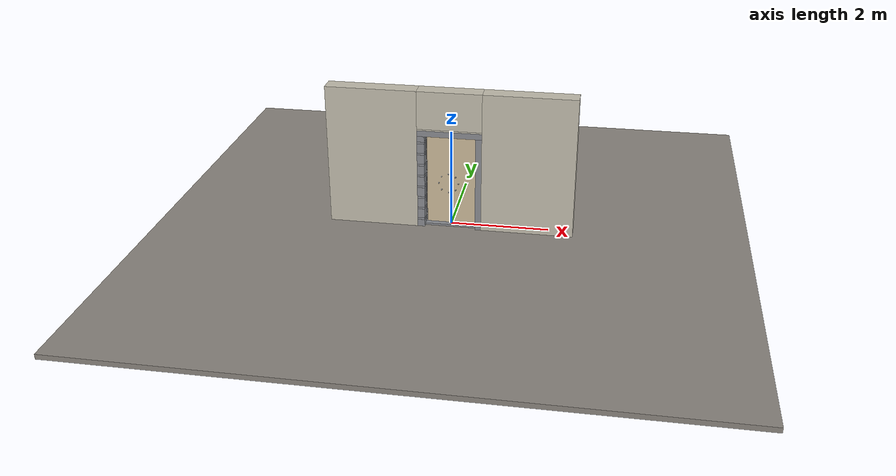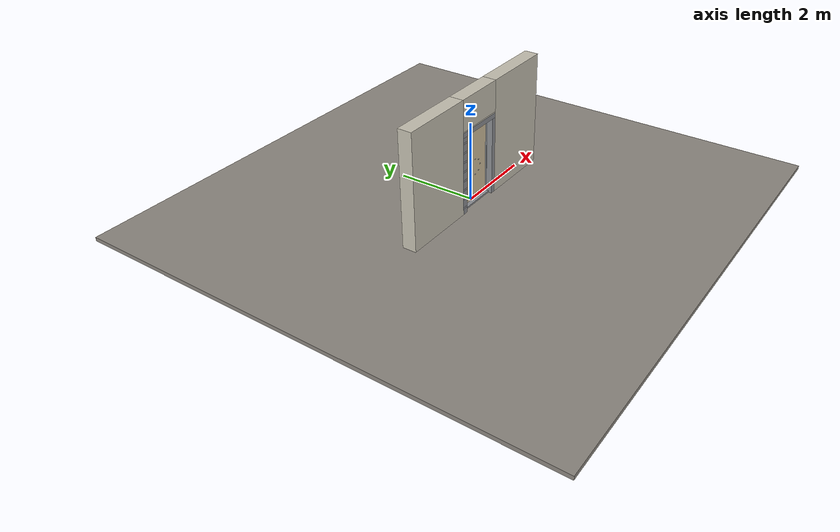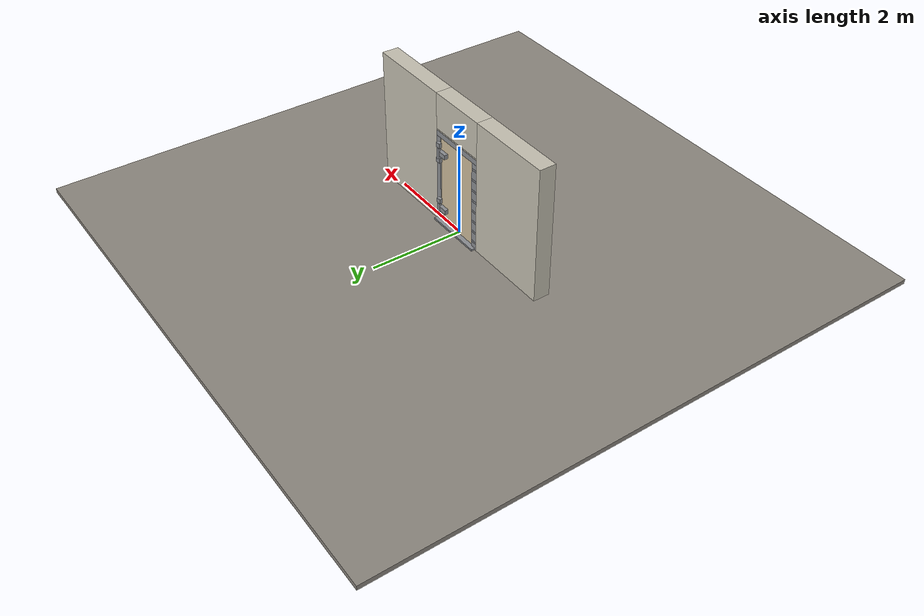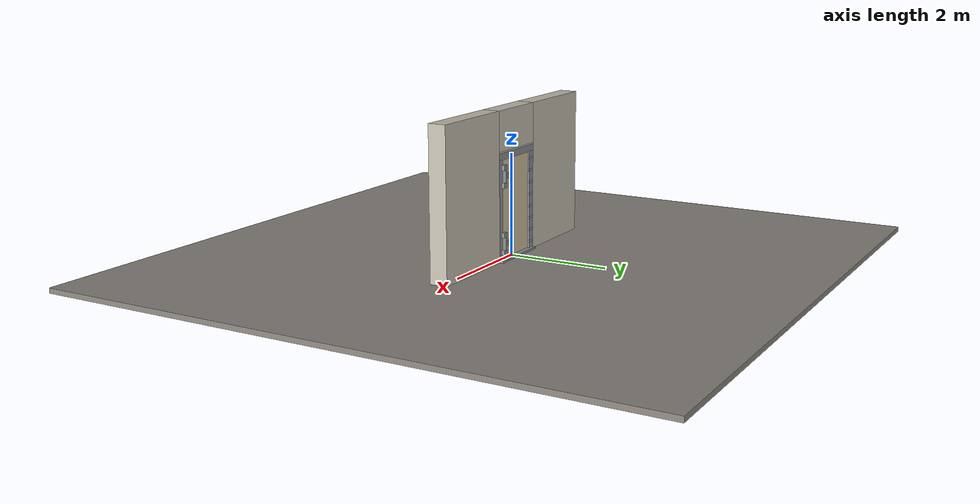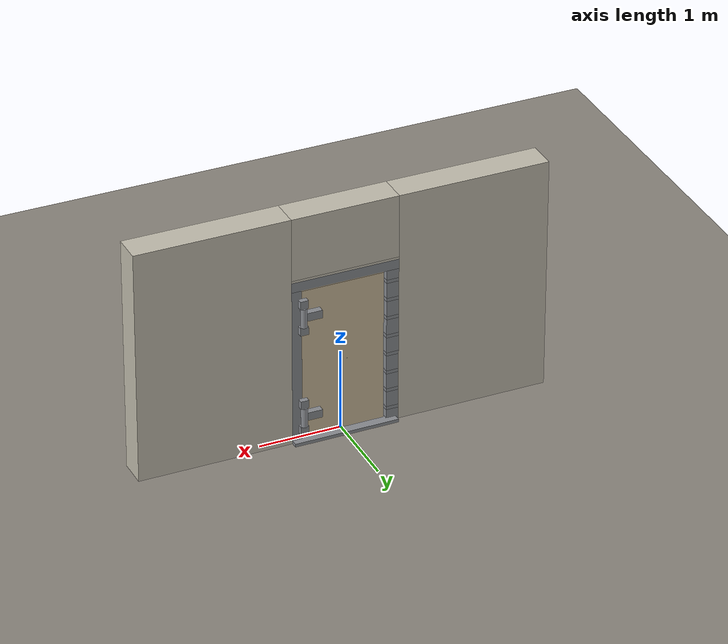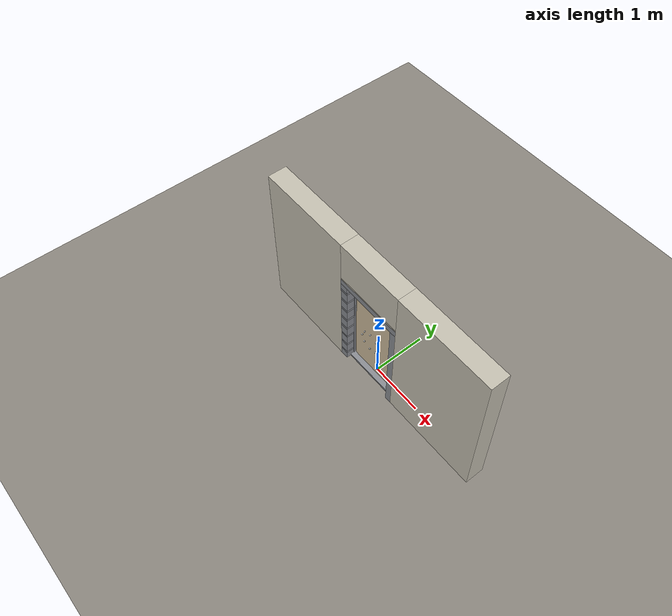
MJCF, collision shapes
<?xml version="1.0" ?>
<mujoco model="db0458_vault_full">
  <compiler angle="radian" meshdir="../../hardware" texturedir="../../textures" autolimits="true" inertiafromgeom="false"/>
  <option timestep="0.002" integrator="implicitfast" cone="elliptic" impratio="10" noslip_iterations="3">
    <flag multiccd="enable"/>
  </option>
  <size memory="16M"/>
  <default>
    <geom condim="4" solref="0.005 1" solimp="0.95 0.99 0.001"/>
    <joint solreflimit="0.005 1" solimplimit="0.95 0.99 0.001"/>
    <tendon solreflimit="0.005 1"/>
    <equality solref="0.002 1"/>
  </default>
  <visual>
    <headlight ambient="0.4 0.4 0.4" diffuse="0.7 0.7 0.7" specular="0.2 0.2 0.2"/>
    <quality shadowsize="4096"/>
    <map znear="0.01" zfar="60"/>
  </visual>
  <asset>
    <mesh name="wheel_3a0bfbe305" file="wheel_3a0bfbe305.obj"/>
    <material name="mat_floor" rgba="0.55 0.53 0.5 1" specular="0.2" shininess="0.15" reflectance="0"/>
    <material name="mat_wall" rgba="0.78 0.76 0.7 1" specular="0.2" shininess="0.1" reflectance="0"/>
    <material name="mat_leaf" rgba="0.82 0.75 0.62 1" specular="0.23" shininess="0.63" reflectance="0.02"/>
    <material name="mat_op_stainless" rgba="0.75 0.76 0.77 1" specular="0.8" shininess="0.65" reflectance="0.4"/>
    <material name="mat_trim" rgba="0.85 0.66 0.3 1" specular="0.8" shininess="0.75" reflectance="0.4"/>
    <material name="mat_vault_bolt" rgba="0.75 0.76 0.77 1" specular="0.8" shininess="0.65" reflectance="0.4"/>
    <material name="mat_frame" rgba="0.55 0.56 0.58 1" specular="0.8" shininess="0.55" reflectance="0.4"/>
    <material name="mat_seal" rgba="0.1 0.1 0.1 1" specular="0.2" shininess="0.1" reflectance="0"/>
    <material name="mat_hinge" rgba="0.55 0.56 0.58 1" specular="0.8" shininess="0.55" reflectance="0.4"/>
    <texture name="skybox" type="skybox" builtin="gradient" rgb1="0.6 0.7 0.85" rgb2="0.9 0.92 0.95" width="256" height="256"/>
  </asset>
  <worldbody>
    <light name="sun" pos="1.5 -2.5 4" dir="-0.3 0.5 -0.8" directional="true" diffuse="0.8 0.8 0.8" specular="0.3 0.3 0.3" castshadow="true"/>
    <light name="fill" pos="-1.5 2.5 3" dir="0.3 -0.5 -0.7" directional="true" diffuse="0.35 0.35 0.4" castshadow="false"/>
    <camera name="robot_view" pos="0 -2.551875 1.677125" xyaxes="1 0 0 0 0.26963 0.962964" fovy="52"/>
    <camera name="far_view" pos="0 2.391875 1.677125" xyaxes="-1 0 0 0 -0.26963 0.962964" fovy="52"/>
    <camera name="iso" pos="-1.878625 -2.156375 2.072625" xyaxes="0.741536 -0.670913 0 0.242917 0.268487 0.932151" fovy="46"/>
    <camera name="detail_handle" pos="0.14 -0.955 1.43" xyaxes="0.97561 0.219512 0 -0.070934 0.315262 0.94635" fovy="38"/>
    <geom name="floor" type="box" size="6 6 0.05" pos="0 0 -0.05" material="mat_floor" group="0" contype="1" conaffinity="1" friction="0.8 0.005 0.0001" density="2400"/>
    <geom name="wall_left" type="box" size="0.917 0.175 1.45" pos="-1.583 -0.08 1.45" material="mat_wall" group="0" contype="1" conaffinity="1" friction="0.6 0.005 0.0001" density="800"/>
    <geom name="wall_right" type="box" size="0.932 0.175 1.45" pos="1.568 -0.08 1.45" material="mat_wall" group="0" contype="1" conaffinity="1" friction="0.6 0.005 0.0001" density="800"/>
    <geom name="wall_header" type="box" size="0.651 0.175 0.39" pos="-0.015 -0.08 2.51" material="mat_wall" group="0" contype="1" conaffinity="1" friction="0.6 0.005 0.0001" density="800"/>
    <geom name="jamb_hinge" type="box" size="0.06 0.175 0.985" pos="0.576 -0.08 0.985" material="mat_frame" group="0" contype="1" conaffinity="1" friction="0.6 0.005 0.0001" density="300"/>
    <geom name="strike_169_wall_n" type="box" size="0.075 0.1185 0.021" pos="-0.591 -0.1365 0.16875" material="mat_frame" group="0" contype="1" conaffinity="1" friction="0.6 0.005 0.0001" density="300"/>
    <geom name="strike_169_wall_p" type="box" size="0.075 0.0385 0.021" pos="-0.591 0.0565 0.16875" material="mat_frame" group="0" contype="1" conaffinity="1" friction="0.6 0.005 0.0001" density="300"/>
    <geom name="strike_169_back" type="box" size="0.036 0.018 0.021" pos="-0.63 0 0.16875" material="mat_frame" group="0" contype="1" conaffinity="1" friction="0.6 0.005 0.0001" density="300"/>
    <geom name="strike_406_wall_n" type="box" size="0.075 0.1185 0.021" pos="-0.591 -0.1365 0.40625" material="mat_frame" group="0" contype="1" conaffinity="1" friction="0.6 0.005 0.0001" density="300"/>
    <geom name="strike_406_wall_p" type="box" size="0.075 0.0385 0.021" pos="-0.591 0.0565 0.40625" material="mat_frame" group="0" contype="1" conaffinity="1" friction="0.6 0.005 0.0001" density="300"/>
    <geom name="strike_406_back" type="box" size="0.036 0.018 0.021" pos="-0.63 0 0.40625" material="mat_frame" group="0" contype="1" conaffinity="1" friction="0.6 0.005 0.0001" density="300"/>
    <geom name="strike_644_wall_n" type="box" size="0.075 0.1185 0.021" pos="-0.591 -0.1365 0.64375" material="mat_frame" group="0" contype="1" conaffinity="1" friction="0.6 0.005 0.0001" density="300"/>
    <geom name="strike_644_wall_p" type="box" size="0.075 0.0385 0.021" pos="-0.591 0.0565 0.64375" material="mat_frame" group="0" contype="1" conaffinity="1" friction="0.6 0.005 0.0001" density="300"/>
    <geom name="strike_644_back" type="box" size="0.036 0.018 0.021" pos="-0.63 0 0.64375" material="mat_frame" group="0" contype="1" conaffinity="1" friction="0.6 0.005 0.0001" density="300"/>
    <geom name="strike_881_wall_n" type="box" size="0.075 0.1185 0.021" pos="-0.591 -0.1365 0.88125" material="mat_frame" group="0" contype="1" conaffinity="1" friction="0.6 0.005 0.0001" density="300"/>
    <geom name="strike_881_wall_p" type="box" size="0.075 0.0385 0.021" pos="-0.591 0.0565 0.88125" material="mat_frame" group="0" contype="1" conaffinity="1" friction="0.6 0.005 0.0001" density="300"/>
    <geom name="strike_881_back" type="box" size="0.036 0.018 0.021" pos="-0.63 0 0.88125" material="mat_frame" group="0" contype="1" conaffinity="1" friction="0.6 0.005 0.0001" density="300"/>
    <geom name="strike_1119_wall_n" type="box" size="0.075 0.1185 0.021" pos="-0.591 -0.1365 1.11875" material="mat_frame" group="0" contype="1" conaffinity="1" friction="0.6 0.005 0.0001" density="300"/>
    <geom name="strike_1119_wall_p" type="box" size="0.075 0.0385 0.021" pos="-0.591 0.0565 1.11875" material="mat_frame" group="0" contype="1" conaffinity="1" friction="0.6 0.005 0.0001" density="300"/>
    <geom name="strike_1119_back" type="box" size="0.036 0.018 0.021" pos="-0.63 0 1.11875" material="mat_frame" group="0" contype="1" conaffinity="1" friction="0.6 0.005 0.0001" density="300"/>
    <geom name="strike_1356_wall_n" type="box" size="0.075 0.1185 0.021" pos="-0.591 -0.1365 1.35625" material="mat_frame" group="0" contype="1" conaffinity="1" friction="0.6 0.005 0.0001" density="300"/>
    <geom name="strike_1356_wall_p" type="box" size="0.075 0.0385 0.021" pos="-0.591 0.0565 1.35625" material="mat_frame" group="0" contype="1" conaffinity="1" friction="0.6 0.005 0.0001" density="300"/>
    <geom name="strike_1356_back" type="box" size="0.036 0.018 0.021" pos="-0.63 0 1.35625" material="mat_frame" group="0" contype="1" conaffinity="1" friction="0.6 0.005 0.0001" density="300"/>
    <geom name="strike_1594_wall_n" type="box" size="0.075 0.1185 0.021" pos="-0.591 -0.1365 1.59375" material="mat_frame" group="0" contype="1" conaffinity="1" friction="0.6 0.005 0.0001" density="300"/>
    <geom name="strike_1594_wall_p" type="box" size="0.075 0.0385 0.021" pos="-0.591 0.0565 1.59375" material="mat_frame" group="0" contype="1" conaffinity="1" friction="0.6 0.005 0.0001" density="300"/>
    <geom name="strike_1594_back" type="box" size="0.036 0.018 0.021" pos="-0.63 0 1.59375" material="mat_frame" group="0" contype="1" conaffinity="1" friction="0.6 0.005 0.0001" density="300"/>
    <geom name="strike_1831_wall_n" type="box" size="0.075 0.1185 0.021" pos="-0.591 -0.1365 1.83125" material="mat_frame" group="0" contype="1" conaffinity="1" friction="0.6 0.005 0.0001" density="300"/>
    <geom name="strike_1831_wall_p" type="box" size="0.075 0.0385 0.021" pos="-0.591 0.0565 1.83125" material="mat_frame" group="0" contype="1" conaffinity="1" friction="0.6 0.005 0.0001" density="300"/>
    <geom name="strike_1831_back" type="box" size="0.036 0.018 0.021" pos="-0.63 0 1.83125" material="mat_frame" group="0" contype="1" conaffinity="1" friction="0.6 0.005 0.0001" density="300"/>
    <geom name="jamb_strike_0" type="box" size="0.075 0.175 0.073875" pos="-0.591 -0.08 0.073875" material="mat_frame" group="0" contype="1" conaffinity="1" friction="0.6 0.005 0.0001" density="300"/>
    <geom name="jamb_strike_1" type="box" size="0.075 0.175 0.09775" pos="-0.591 -0.08 0.2875" material="mat_frame" group="0" contype="1" conaffinity="1" friction="0.6 0.005 0.0001" density="300"/>
    <geom name="jamb_strike_2" type="box" size="0.075 0.175 0.09775" pos="-0.591 -0.08 0.525" material="mat_frame" group="0" contype="1" conaffinity="1" friction="0.6 0.005 0.0001" density="300"/>
    <geom name="jamb_strike_3" type="box" size="0.075 0.175 0.09775" pos="-0.591 -0.08 0.7625" material="mat_frame" group="0" contype="1" conaffinity="1" friction="0.6 0.005 0.0001" density="300"/>
    <geom name="jamb_strike_4" type="box" size="0.075 0.175 0.09775" pos="-0.591 -0.08 1" material="mat_frame" group="0" contype="1" conaffinity="1" friction="0.6 0.005 0.0001" density="300"/>
    <geom name="jamb_strike_5" type="box" size="0.075 0.175 0.09775" pos="-0.591 -0.08 1.2375" material="mat_frame" group="0" contype="1" conaffinity="1" friction="0.6 0.005 0.0001" density="300"/>
    <geom name="jamb_strike_6" type="box" size="0.075 0.175 0.09775" pos="-0.591 -0.08 1.475" material="mat_frame" group="0" contype="1" conaffinity="1" friction="0.6 0.005 0.0001" density="300"/>
    <geom name="jamb_strike_7" type="box" size="0.075 0.175 0.09775" pos="-0.591 -0.08 1.7125" material="mat_frame" group="0" contype="1" conaffinity="1" friction="0.6 0.005 0.0001" density="300"/>
    <geom name="jamb_strike_8" type="box" size="0.075 0.175 0.058875" pos="-0.591 -0.08 1.911125" material="mat_frame" group="0" contype="1" conaffinity="1" friction="0.6 0.005 0.0001" density="300"/>
    <geom name="jamb_head" type="box" size="0.651 0.175 0.06" pos="-0.015 -0.08 2.03" material="mat_frame" group="0" contype="1" conaffinity="1" friction="0.6 0.005 0.0001" density="300"/>
    <geom name="head_stud" type="box" size="0.651 0.175 0.015" pos="-0.015 -0.08 2.105" material="mat_wall" group="0" contype="1" conaffinity="1" friction="0.6 0.005 0.0001" density="500"/>
    <geom name="stop_hinge" type="box" size="0.0055 0.016 0.985" pos="0.5105 -0.0915 0.985" material="mat_frame" group="0" contype="1" conaffinity="1" friction="0.6 0.005 0.0001" density="300"/>
    <geom name="stop_strike" type="box" size="0.0055 0.016 0.985" pos="-0.5105 -0.0915 0.985" material="mat_frame" group="0" contype="1" conaffinity="1" friction="0.6 0.005 0.0001" density="300"/>
    <geom name="stop_head" type="box" size="0.516 0.016 0.0055" pos="0 -0.0915 1.9645" material="mat_frame" group="0" contype="1" conaffinity="1" friction="0.6 0.005 0.0001" density="300"/>
    <geom name="seal_hinge" type="box" size="0.004 0.006 0.985" pos="0.513 -0.081 0.985" material="mat_seal" group="1" contype="0" conaffinity="0" density="1100"/>
    <geom name="seal_strike" type="box" size="0.004 0.006 0.985" pos="-0.513 -0.081 0.985" material="mat_seal" group="1" contype="0" conaffinity="0" density="1100"/>
    <geom name="seal_head" type="box" size="0.496 0.006 0.008" pos="0 -0.081 1.958" material="mat_seal" group="1" contype="0" conaffinity="0" density="1100"/>
    <geom name="sill_step" type="box" size="0.636 0.175 0.02" pos="0 0 0.02" material="mat_frame" group="0" contype="1" conaffinity="1" friction="0.6 0.005 0.0001" density="7850"/>
    <geom name="hinge_0_bracket_b" type="box" size="0.05 0.0325 0.05" pos="0.51 0.1275 0.18" material="mat_hinge" group="1" contype="0" conaffinity="0" density="7850"/>
    <geom name="hinge_0_bracket_t" type="box" size="0.05 0.0325 0.05" pos="0.51 0.1275 0.52" material="mat_hinge" group="1" contype="0" conaffinity="0" density="7850"/>
    <geom name="hinge_1_bracket_b" type="box" size="0.05 0.0325 0.05" pos="0.51 0.1275 1.48" material="mat_hinge" group="1" contype="0" conaffinity="0" density="7850"/>
    <geom name="hinge_1_bracket_t" type="box" size="0.05 0.0325 0.05" pos="0.51 0.1275 1.82" material="mat_hinge" group="1" contype="0" conaffinity="0" density="7850"/>
    <site name="approach_point" pos="0 -1.5 0" quat="1 0 0 0" size="0.05" rgba="0.2 0.9 0.2 0.5" group="4"/>
    <site name="goal_point" pos="0 1.5 0" quat="1 0 0 0" size="0.05" rgba="0.2 0.9 0.2 0.5" group="4"/>
    <site name="door_plane_center" pos="0 0 0.985" quat="1 0 0 0" size="0.02" rgba="0.2 0.9 0.2 0.5" group="4"/>
    <body name="leaf" pos="0.516 0 0">
      <inertial pos="-0.486459 0.005626 1" mass="1030.567864" quat="0.493038 0.506866 -0.493038 0.506866" diaginertia="93.203145342 318.278863656 406.481382137"/>
      <joint name="leaf_hinge" type="hinge" axis="0 0 -1" pos="-0.006 0.14 0" limited="true" range="0 1.745329" solreflimit="0.02 1" damping="0.39314" frictionloss="104.841324" armature="0.5"/>
      <geom name="leaf_slab" type="box" size="0.5 0.075 0.95" pos="-0.506 0 1" material="mat_leaf" group="0" contype="1" conaffinity="1" friction="0.45 0.005 0.0001" density="1"/>
      <geom name="hinge_0" type="cylinder" size="0.04 0.12" pos="-0.006 0.14 0.35" material="mat_hinge" group="1" contype="0" conaffinity="0" density="7850"/>
      <geom name="hinge_0_arm" type="box" size="0.11 0.04 0.05" pos="-0.116 0.115 0.35" material="mat_hinge" group="1" contype="0" conaffinity="0" density="7850"/>
      <geom name="hinge_1" type="cylinder" size="0.04 0.12" pos="-0.006 0.14 1.65" material="mat_hinge" group="1" contype="0" conaffinity="0" density="7850"/>
      <geom name="hinge_1_arm" type="box" size="0.11 0.04 0.05" pos="-0.116 0.115 1.65" material="mat_hinge" group="1" contype="0" conaffinity="0" density="7850"/>
      <body name="wheel" pos="-0.556 0 0.95">
        <inertial pos="0 -0.145638 0" mass="3.913848" quat="0.707107 -0.707107 0 0" diaginertia="0.063937187 0.063937187 0.115747168"/>
        <joint name="wheel_hinge" type="hinge" axis="0 1 0" limited="true" range="0 6.2832" damping="0.5" frictionloss="5" armature="0.01"/>
        <geom name="wheel_spindle" type="cylinder" size="0.006 0.075" pos="0 0 0" quat="0.707107 -0.707107 0 0" material="mat_op_stainless" group="1" contype="0" conaffinity="0" density="7850"/>
        <geom name="wheel_wheel_n" type="mesh" mesh="wheel_3a0bfbe305" pos="0 -0.075 0" quat="0 0 -0.707107 0.707107" material="mat_op_stainless" group="1" contype="0" conaffinity="0" density="3000"/>
        <geom name="wheel_wheel_col_0_n" type="sphere" size="0.015" pos="0.2 -0.155 0" material="mat_op_stainless" group="0" contype="1" conaffinity="1" friction="0.6 0.005 0.0001" density="3000"/>
        <geom name="wheel_wheel_col_1_n" type="sphere" size="0.015" pos="0.141421 -0.155 0.141421" material="mat_op_stainless" group="0" contype="1" conaffinity="1" friction="0.6 0.005 0.0001" density="3000"/>
        <geom name="wheel_wheel_col_2_n" type="sphere" size="0.015" pos="0 -0.155 0.2" material="mat_op_stainless" group="0" contype="1" conaffinity="1" friction="0.6 0.005 0.0001" density="3000"/>
        <geom name="wheel_wheel_col_3_n" type="sphere" size="0.015" pos="-0.141421 -0.155 0.141421" material="mat_op_stainless" group="0" contype="1" conaffinity="1" friction="0.6 0.005 0.0001" density="3000"/>
        <geom name="wheel_wheel_col_4_n" type="sphere" size="0.015" pos="-0.2 -0.155 0" material="mat_op_stainless" group="0" contype="1" conaffinity="1" friction="0.6 0.005 0.0001" density="3000"/>
        <geom name="wheel_wheel_col_5_n" type="sphere" size="0.015" pos="-0.141421 -0.155 -0.141421" material="mat_op_stainless" group="0" contype="1" conaffinity="1" friction="0.6 0.005 0.0001" density="3000"/>
        <geom name="wheel_wheel_col_6_n" type="sphere" size="0.015" pos="0 -0.155 -0.2" material="mat_op_stainless" group="0" contype="1" conaffinity="1" friction="0.6 0.005 0.0001" density="3000"/>
        <geom name="wheel_wheel_col_7_n" type="sphere" size="0.015" pos="0.141421 -0.155 -0.141421" material="mat_op_stainless" group="0" contype="1" conaffinity="1" friction="0.6 0.005 0.0001" density="3000"/>
        <site name="wheel_grip_n" pos="0 -0.155 0.2" quat="1 0 0 0" size="0.012" rgba="0.2 0.9 0.2 0.5" group="4"/>
      </body>
      <body name="bolt_0" pos="-1.006 0 0.16875">
        <inertial pos="0.004 0 0" mass="0.892286" quat="0 0 -0.707107 0.707107" diaginertia="0.000110765 0.001553238 0.001553238"/>
        <joint name="bolt_0_slide" type="slide" axis="1 0 0" limited="true" range="0 0.072" damping="20" frictionloss="25" armature="0.1"/>
        <geom name="bolt_0_geom" type="capsule" size="0.016 0.06" pos="0.004 0 0" quat="0.707107 0 -0.707107 0" material="mat_vault_bolt" group="0" contype="1" conaffinity="1" friction="0.6 0.005 0.0001" density="7850"/>
      </body>
      <body name="bolt_1" pos="-1.006 0 0.40625">
        <inertial pos="0.004 0 0" mass="0.892286" quat="0 0 -0.707107 0.707107" diaginertia="0.000110765 0.001553238 0.001553238"/>
        <joint name="bolt_1_slide" type="slide" axis="1 0 0" limited="true" range="0 0.072" damping="20" frictionloss="25" armature="0.1"/>
        <geom name="bolt_1_geom" type="capsule" size="0.016 0.06" pos="0.004 0 0" quat="0.707107 0 -0.707107 0" material="mat_vault_bolt" group="0" contype="1" conaffinity="1" friction="0.6 0.005 0.0001" density="7850"/>
      </body>
      <body name="bolt_2" pos="-1.006 0 0.64375">
        <inertial pos="0.004 0 0" mass="0.892286" quat="0 0 -0.707107 0.707107" diaginertia="0.000110765 0.001553238 0.001553238"/>
        <joint name="bolt_2_slide" type="slide" axis="1 0 0" limited="true" range="0 0.072" damping="20" frictionloss="25" armature="0.1"/>
        <geom name="bolt_2_geom" type="capsule" size="0.016 0.06" pos="0.004 0 0" quat="0.707107 0 -0.707107 0" material="mat_vault_bolt" group="0" contype="1" conaffinity="1" friction="0.6 0.005 0.0001" density="7850"/>
      </body>
      <body name="bolt_3" pos="-1.006 0 0.88125">
        <inertial pos="0.004 0 0" mass="0.892286" quat="0 0 -0.707107 0.707107" diaginertia="0.000110765 0.001553238 0.001553238"/>
        <joint name="bolt_3_slide" type="slide" axis="1 0 0" limited="true" range="0 0.072" damping="20" frictionloss="25" armature="0.1"/>
        <geom name="bolt_3_geom" type="capsule" size="0.016 0.06" pos="0.004 0 0" quat="0.707107 0 -0.707107 0" material="mat_vault_bolt" group="0" contype="1" conaffinity="1" friction="0.6 0.005 0.0001" density="7850"/>
      </body>
      <body name="bolt_4" pos="-1.006 0 1.11875">
        <inertial pos="0.004 0 0" mass="0.892286" quat="0 0 -0.707107 0.707107" diaginertia="0.000110765 0.001553238 0.001553238"/>
        <joint name="bolt_4_slide" type="slide" axis="1 0 0" limited="true" range="0 0.072" damping="20" frictionloss="25" armature="0.1"/>
        <geom name="bolt_4_geom" type="capsule" size="0.016 0.06" pos="0.004 0 0" quat="0.707107 0 -0.707107 0" material="mat_vault_bolt" group="0" contype="1" conaffinity="1" friction="0.6 0.005 0.0001" density="7850"/>
      </body>
      <body name="bolt_5" pos="-1.006 0 1.35625">
        <inertial pos="0.004 0 0" mass="0.892286" quat="0 0 -0.707107 0.707107" diaginertia="0.000110765 0.001553238 0.001553238"/>
        <joint name="bolt_5_slide" type="slide" axis="1 0 0" limited="true" range="0 0.072" damping="20" frictionloss="25" armature="0.1"/>
        <geom name="bolt_5_geom" type="capsule" size="0.016 0.06" pos="0.004 0 0" quat="0.707107 0 -0.707107 0" material="mat_vault_bolt" group="0" contype="1" conaffinity="1" friction="0.6 0.005 0.0001" density="7850"/>
      </body>
      <body name="bolt_6" pos="-1.006 0 1.59375">
        <inertial pos="0.004 0 0" mass="0.892286" quat="0 0 -0.707107 0.707107" diaginertia="0.000110765 0.001553238 0.001553238"/>
        <joint name="bolt_6_slide" type="slide" axis="1 0 0" limited="true" range="0 0.072" damping="20" frictionloss="25" armature="0.1"/>
        <geom name="bolt_6_geom" type="capsule" size="0.016 0.06" pos="0.004 0 0" quat="0.707107 0 -0.707107 0" material="mat_vault_bolt" group="0" contype="1" conaffinity="1" friction="0.6 0.005 0.0001" density="7850"/>
      </body>
      <body name="bolt_7" pos="-1.006 0 1.83125">
        <inertial pos="0.004 0 0" mass="0.892286" quat="0 0 -0.707107 0.707107" diaginertia="0.000110765 0.001553238 0.001553238"/>
        <joint name="bolt_7_slide" type="slide" axis="1 0 0" limited="true" range="0 0.072" damping="20" frictionloss="25" armature="0.1"/>
        <geom name="bolt_7_geom" type="capsule" size="0.016 0.06" pos="0.004 0 0" quat="0.707107 0 -0.707107 0" material="mat_vault_bolt" group="0" contype="1" conaffinity="1" friction="0.6 0.005 0.0001" density="7850"/>
      </body>
    </body>
  </worldbody>
  <equality>
    <joint name="wheel_bolt_0" joint1="bolt_0_slide" joint2="wheel_hinge" polycoef="0 0.011459 0 0 0" active="true"/>
    <joint name="wheel_bolt_1" joint1="bolt_1_slide" joint2="wheel_hinge" polycoef="0 0.011459 0 0 0" active="true"/>
    <joint name="wheel_bolt_2" joint1="bolt_2_slide" joint2="wheel_hinge" polycoef="0 0.011459 0 0 0" active="true"/>
    <joint name="wheel_bolt_3" joint1="bolt_3_slide" joint2="wheel_hinge" polycoef="0 0.011459 0 0 0" active="true"/>
    <joint name="wheel_bolt_4" joint1="bolt_4_slide" joint2="wheel_hinge" polycoef="0 0.011459 0 0 0" active="true"/>
    <joint name="wheel_bolt_5" joint1="bolt_5_slide" joint2="wheel_hinge" polycoef="0 0.011459 0 0 0" active="true"/>
    <joint name="wheel_bolt_6" joint1="bolt_6_slide" joint2="wheel_hinge" polycoef="0 0.011459 0 0 0" active="true"/>
    <joint name="wheel_bolt_7" joint1="bolt_7_slide" joint2="wheel_hinge" polycoef="0 0.011459 0 0 0" active="true"/>
  </equality>
  <sensor>
    <jointpos name="leaf_hinge_pos" joint="leaf_hinge"/>
    <jointvel name="leaf_hinge_vel" joint="leaf_hinge"/>
    <jointpos name="wheel_hinge_pos" joint="wheel_hinge"/>
    <jointvel name="wheel_hinge_vel" joint="wheel_hinge"/>
    <jointpos name="bolt_0_slide_pos" joint="bolt_0_slide"/>
    <jointvel name="bolt_0_slide_vel" joint="bolt_0_slide"/>
    <jointpos name="bolt_1_slide_pos" joint="bolt_1_slide"/>
    <jointvel name="bolt_1_slide_vel" joint="bolt_1_slide"/>
    <jointpos name="bolt_2_slide_pos" joint="bolt_2_slide"/>
    <jointvel name="bolt_2_slide_vel" joint="bolt_2_slide"/>
    <jointpos name="bolt_3_slide_pos" joint="bolt_3_slide"/>
    <jointvel name="bolt_3_slide_vel" joint="bolt_3_slide"/>
    <jointpos name="bolt_4_slide_pos" joint="bolt_4_slide"/>
    <jointvel name="bolt_4_slide_vel" joint="bolt_4_slide"/>
    <jointpos name="bolt_5_slide_pos" joint="bolt_5_slide"/>
    <jointvel name="bolt_5_slide_vel" joint="bolt_5_slide"/>
    <jointpos name="bolt_6_slide_pos" joint="bolt_6_slide"/>
    <jointvel name="bolt_6_slide_vel" joint="bolt_6_slide"/>
    <jointpos name="bolt_7_slide_pos" joint="bolt_7_slide"/>
    <jointvel name="bolt_7_slide_vel" joint="bolt_7_slide"/>
  </sensor>
</mujoco>
